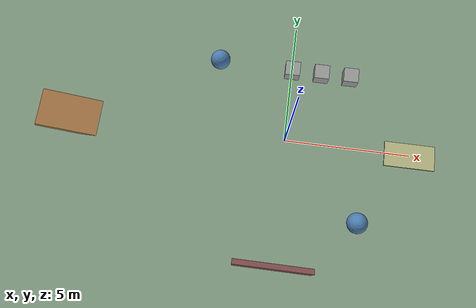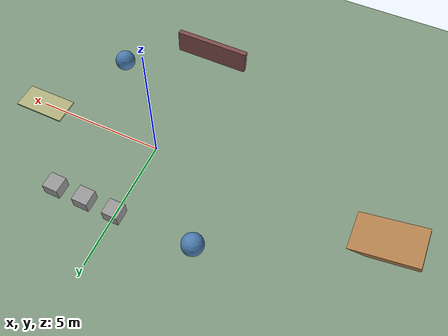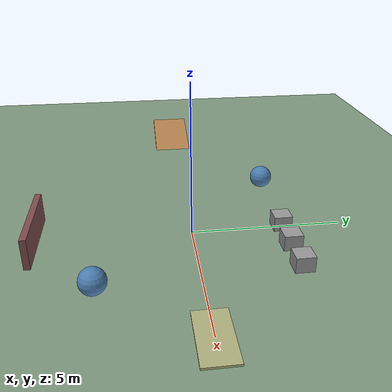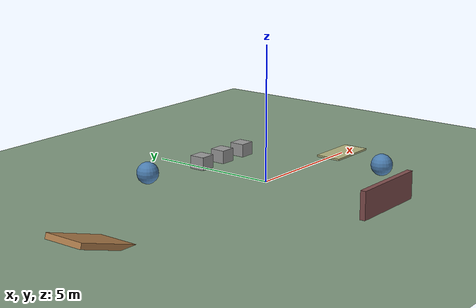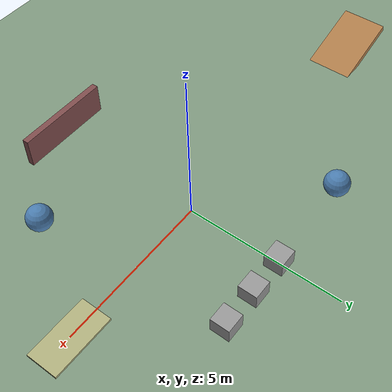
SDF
<?xml version="1.0" ?>
<sdf version="1.9">
  <world name="go2_terrain_world">
    <physics name="default_physics" type="ode">
      <max_step_size>0.001</max_step_size>
      <real_time_factor>1.0</real_time_factor>
      <gravity>0 0 -9.81</gravity>
    </physics>

    <plugin filename="libIgnitionSystemPlugin.so" name="ignition::gazebo::Systems::Physics" />
    <plugin filename="libIgnitionSystemPlugin.so" name="ignition::gazebo::Systems::UserCommands" />
    <plugin filename="libIgnitionSystemPlugin.so" name="ignition::gazebo::Systems::SceneTransformer" />
    <plugin filename="libIgnitionSystemPlugin.so" name="ignition::gazebo::Systems::Contact" />
    <plugin filename="libIgnitionSystemPlugin.so" name="ignition::gazebo::Systems::Imu" />
    <plugin filename="libIgnitionSystemPlugin.so" name="ignition::gazebo::Systems::Rendering" />

    <!-- Lighting -->
    <light type="directional" name="sun">
      <cast_shadows>true</cast_shadows>
      <pose>0 0 15 0 0 0</pose>
      <diffuse>1.0 1.0 1.0 1</diffuse>
      <specular>0.3 0.3 0.3 1</specular>
      <attenuation>
        <range>1000</range>
        <constant>0.9</constant>
        <linear>0.01</linear>
        <quadratic>0.001</quadratic>
      </attenuation>
      <direction>-0.5 0.1 -0.9</direction>
    </light>

    <!-- Main ground plane -->
    <model name="ground_plane">
      <static>true</static>
      <link name="link">
        <collision name="collision">
          <geometry>
            <plane>
              <normal>0 0 1</normal>
              <size>200 200</size>
            </plane>
          </geometry>
          <surface>
            <friction>
              <ode>
                <mu>1.2</mu>
                <mu2>1.2</mu2>
              </ode>
            </friction>
          </surface>
        </collision>
        <visual name="visual">
          <geometry>
            <plane>
              <normal>0 0 1</normal>
              <size>200 200</size>
            </plane>
          </geometry>
          <material>
            <ambient>0.5 0.6 0.5 1</ambient>
            <diffuse>0.5 0.6 0.5 1</diffuse>
            <specular>0.2 0.2 0.2 1</specular>
          </material>
        </visual>
      </link>
    </model>

    <!-- Ramp for climbing test -->
    <model name="ramp">
      <pose>5 0 0 0 0 0</pose>
      <link name="ramp_link">
        <collision name="collision">
          <geometry>
            <box>
              <size>2.0 1.0 0.1</size>
            </box>
          </geometry>
        </collision>
        <visual name="visual">
          <geometry>
            <box>
              <size>2.0 1.0 0.1</size>
            </box>
          </geometry>
          <material>
            <ambient>0.7 0.7 0.5 1</ambient>
            <diffuse>0.7 0.7 0.5 1</diffuse>
            <specular>0.1 0.1 0.1 1</specular>
          </material>
        </visual>
      </link>
    </model>

    <!-- Sloped ramp for terrain -->
    <model name="slope_ramp">
      <pose>-8 0 0 0 0.3 0</pose>
      <link name="slope_link">
        <collision name="collision">
          <geometry>
            <box>
              <size>4.0 1.5 0.2</size>
            </box>
          </geometry>
        </collision>
        <visual name="visual">
          <geometry>
            <box>
              <size>4.0 1.5 0.2</size>
            </box>
          </geometry>
          <material>
            <ambient>0.7 0.5 0.3 1</ambient>
            <diffuse>0.7 0.5 0.3 1</diffuse>
            <specular>0.1 0.1 0.1 1</specular>
          </material>
        </visual>
      </link>
    </model>

    <!-- Stepping stones -->
    <model name="stone_1">
      <pose>0 3 0.25 0 0 0</pose>
      <link name="stone_link">
        <collision name="collision">
          <geometry>
            <box>
              <size>0.6 0.6 0.5</size>
            </box>
          </geometry>
        </collision>
        <visual name="visual">
          <geometry>
            <box>
              <size>0.6 0.6 0.5</size>
            </box>
          </geometry>
          <material>
            <ambient>0.6 0.6 0.6 1</ambient>
            <diffuse>0.6 0.6 0.6 1</diffuse>
            <specular>0.3 0.3 0.3 1</specular>
          </material>
        </visual>
      </link>
    </model>

    <model name="stone_2">
      <pose>1.2 3 0.25 0 0 0</pose>
      <link name="stone_link">
        <collision name="collision">
          <geometry>
            <box>
              <size>0.6 0.6 0.5</size>
            </box>
          </geometry>
        </collision>
        <visual name="visual">
          <geometry>
            <box>
              <size>0.6 0.6 0.5</size>
            </box>
          </geometry>
          <material>
            <ambient>0.6 0.6 0.6 1</ambient>
            <diffuse>0.6 0.6 0.6 1</diffuse>
            <specular>0.3 0.3 0.3 1</specular>
          </material>
        </visual>
      </link>
    </model>

    <model name="stone_3">
      <pose>2.4 3 0.25 0 0 0</pose>
      <link name="stone_link">
        <collision name="collision">
          <geometry>
            <box>
              <size>0.6 0.6 0.5</size>
            </box>
          </geometry>
        </collision>
        <visual name="visual">
          <geometry>
            <box>
              <size>0.6 0.6 0.5</size>
            </box>
          </geometry>
          <material>
            <ambient>0.6 0.6 0.6 1</ambient>
            <diffuse>0.6 0.6 0.6 1</diffuse>
            <specular>0.3 0.3 0.3 1</specular>
          </material>
        </visual>
      </link>
    </model>

    <!-- Wall obstacle -->
    <model name="wall">
      <pose>0 -5 0.5 0 0 0</pose>
      <link name="wall_link">
        <collision name="collision">
          <geometry>
            <box>
              <size>3.0 0.2 1.0</size>
            </box>
          </geometry>
        </collision>
        <visual name="visual">
          <geometry>
            <box>
              <size>3.0 0.2 1.0</size>
            </box>
          </geometry>
          <material>
            <ambient>0.5 0.3 0.3 1</ambient>
            <diffuse>0.5 0.3 0.3 1</diffuse>
            <specular>0.1 0.1 0.1 1</specular>
          </material>
        </visual>
      </link>
    </model>

    <!-- Random obstacles -->
    <model name="obstacle_1">
      <pose>3 -3 0.5 0 0 0</pose>
      <link name="obs_link">
        <collision name="collision">
          <geometry>
            <sphere>
              <radius>0.4</radius>
            </sphere>
          </geometry>
        </collision>
        <visual name="visual">
          <geometry>
            <sphere>
              <radius>0.4</radius>
            </sphere>
          </geometry>
          <material>
            <ambient>0.3 0.5 0.7 1</ambient>
            <diffuse>0.3 0.5 0.7 1</diffuse>
            <specular>0.2 0.2 0.2 1</specular>
          </material>
        </visual>
      </link>
    </model>

    <model name="obstacle_2">
      <pose>-3 3 0.5 0 0 0</pose>
      <link name="obs_link">
        <collision name="collision">
          <geometry>
            <sphere>
              <radius>0.4</radius>
            </sphere>
          </geometry>
        </collision>
        <visual name="visual">
          <geometry>
            <sphere>
              <radius>0.4</radius>
            </sphere>
          </geometry>
          <material>
            <ambient>0.3 0.5 0.7 1</ambient>
            <diffuse>0.3 0.5 0.7 1</diffuse>
            <specular>0.2 0.2 0.2 1</specular>
          </material>
        </visual>
      </link>
    </model>
  </world>
</sdf>
